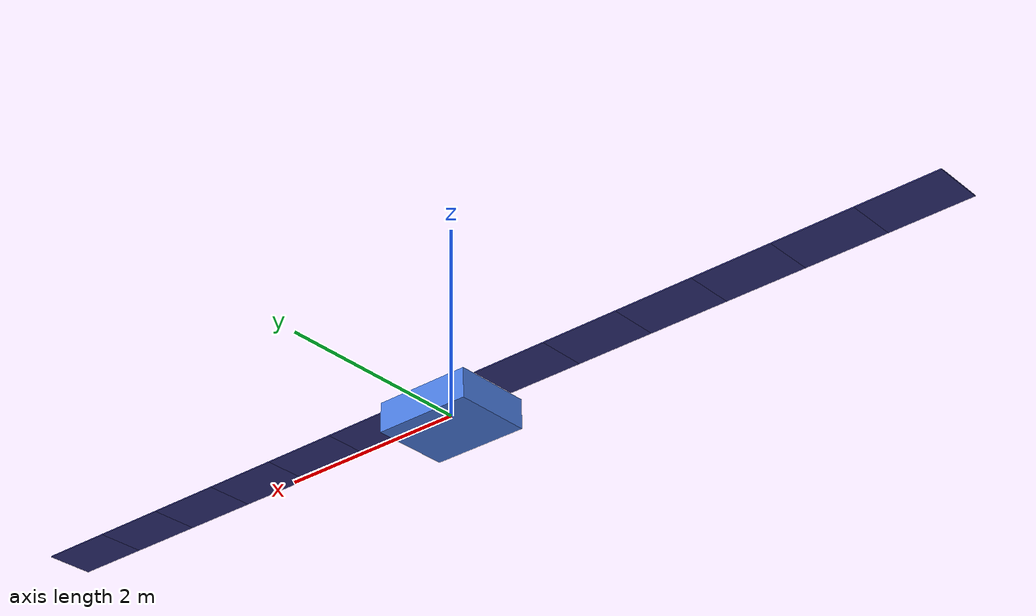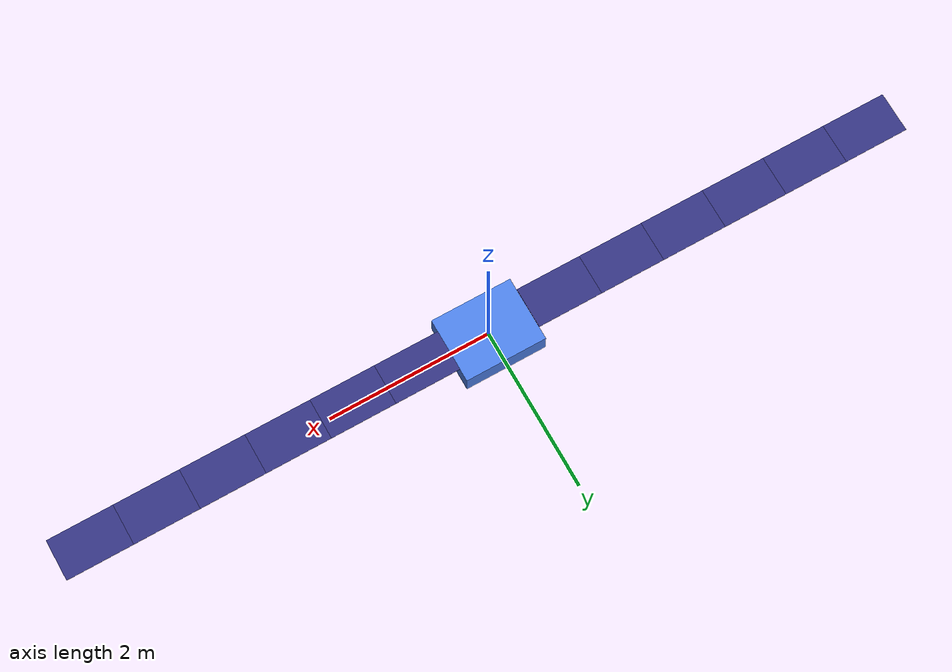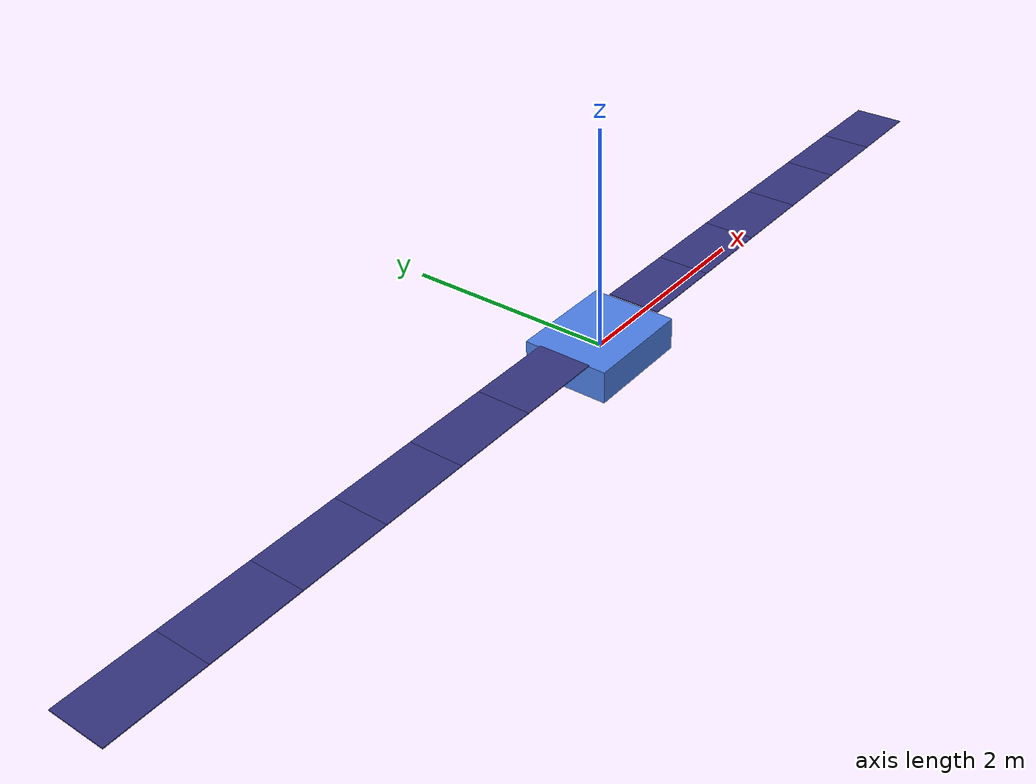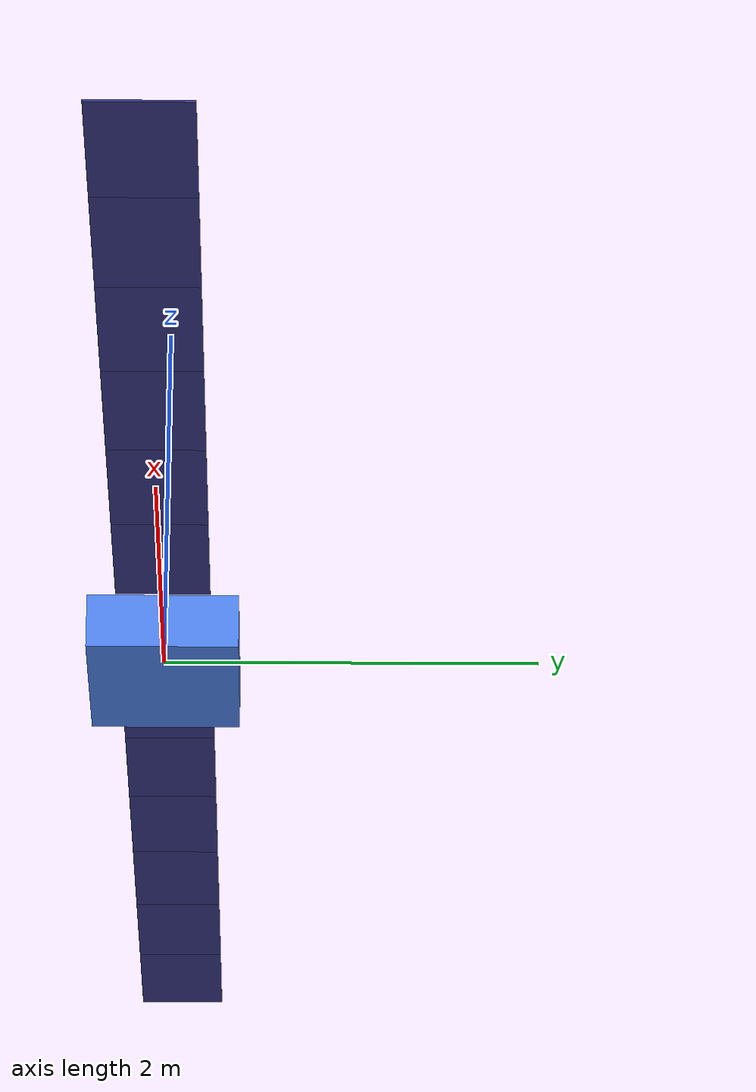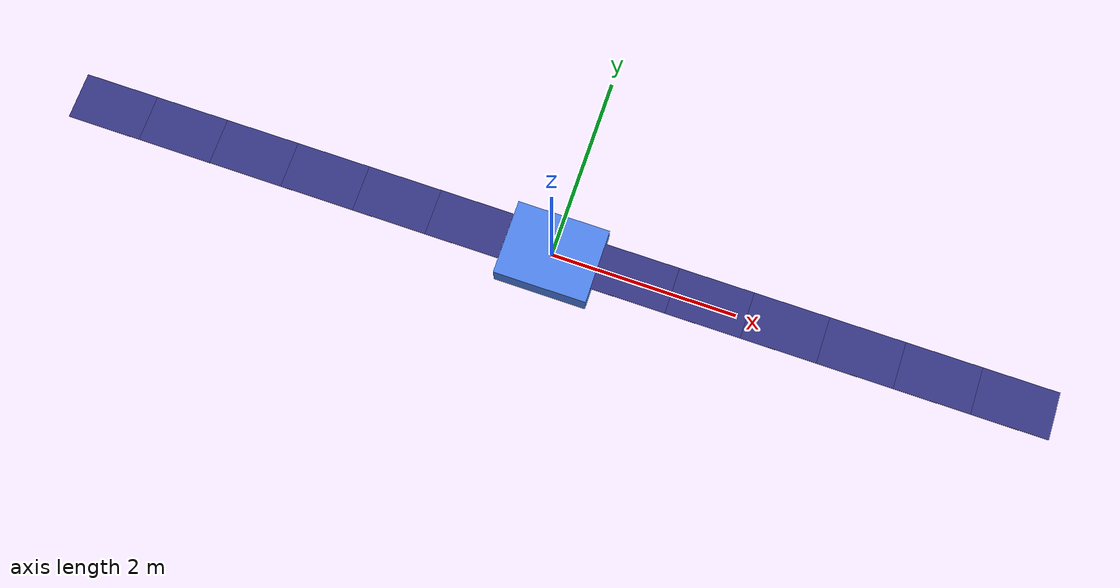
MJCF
<mujoco model="panel_deploy">

  <compiler angle="radian"/>
  <option timestep="0.005" gravity="0 0 0">
    <flag contact="enable"/>
  </option>

  <size njmax="200" nconmax="200"/>

  <default>
    <joint armature="0.005" damping="0.05"/>
    <geom condim="3" friction="0.5 0.005 0.0001"
          solref="0.005 1" solimp="0.9 0.95 0.001"/>
    <default class="panel_hinge">
      <joint type="hinge" axis="0 1 0" range="-0.05 3.2"
             stiffness="2.5" damping="0.4" springref="0"/>
    </default>
    <default class="panel_geom">
      <geom type="box" size="0.4 0.25 0.005" mass="3"
            contype="2" conaffinity="2" rgba="0.2 0.2 0.5 1"/>
    </default>
  </default>

  <worldbody>
    <body name="bus" pos="0 0 0">
      <freejoint name="base"/>
      <geom name="bus" type="box" size="0.5 0.4 0.15" mass="300"
            contype="1" conaffinity="1" rgba="0.3 0.5 0.9 1"/>

      <!-- ============ +X wing: 6 panels ============ -->
      <body name="wp_0" pos="0.5 0 0.16">
        <joint name="hp_0" class="panel_hinge"/>
        <geom name="panel_p_0" pos="0.4 0 0" class="panel_geom"/>
        <body name="wp_1" pos="0.8 0 0">
          <joint name="hp_1" class="panel_hinge"/>
          <geom name="panel_p_1" pos="0.4 0 0" class="panel_geom"/>
          <body name="wp_2" pos="0.8 0 0">
            <joint name="hp_2" class="panel_hinge"/>
            <geom name="panel_p_2" pos="0.4 0 0" class="panel_geom"/>
            <body name="wp_3" pos="0.8 0 0">
              <joint name="hp_3" class="panel_hinge"/>
              <geom name="panel_p_3" pos="0.4 0 0" class="panel_geom"/>
              <body name="wp_4" pos="0.8 0 0">
                <joint name="hp_4" class="panel_hinge"/>
                <geom name="panel_p_4" pos="0.4 0 0" class="panel_geom"/>
                <body name="wp_5" pos="0.8 0 0">
                  <joint name="hp_5" class="panel_hinge"/>
                  <geom name="panel_p_5" pos="0.4 0 0" class="panel_geom"/>
                </body>
              </body>
            </body>
          </body>
        </body>
      </body>

      <!-- ============ -X wing: 6 panels (mirrored along X) ============ -->
      <body name="wn_0" pos="-0.5 0 0.16">
        <joint name="hn_0" class="panel_hinge"/>
        <geom name="panel_n_0" pos="-0.4 0 0" class="panel_geom"/>
        <body name="wn_1" pos="-0.8 0 0">
          <joint name="hn_1" class="panel_hinge"/>
          <geom name="panel_n_1" pos="-0.4 0 0" class="panel_geom"/>
          <body name="wn_2" pos="-0.8 0 0">
            <joint name="hn_2" class="panel_hinge"/>
            <geom name="panel_n_2" pos="-0.4 0 0" class="panel_geom"/>
            <body name="wn_3" pos="-0.8 0 0">
              <joint name="hn_3" class="panel_hinge"/>
              <geom name="panel_n_3" pos="-0.4 0 0" class="panel_geom"/>
              <body name="wn_4" pos="-0.8 0 0">
                <joint name="hn_4" class="panel_hinge"/>
                <geom name="panel_n_4" pos="-0.4 0 0" class="panel_geom"/>
                <body name="wn_5" pos="-0.8 0 0">
                  <joint name="hn_5" class="panel_hinge"/>
                  <geom name="panel_n_5" pos="-0.4 0 0" class="panel_geom"/>
                </body>
              </body>
            </body>
          </body>
        </body>
      </body>
    </body>
  </worldbody>
</mujoco>
